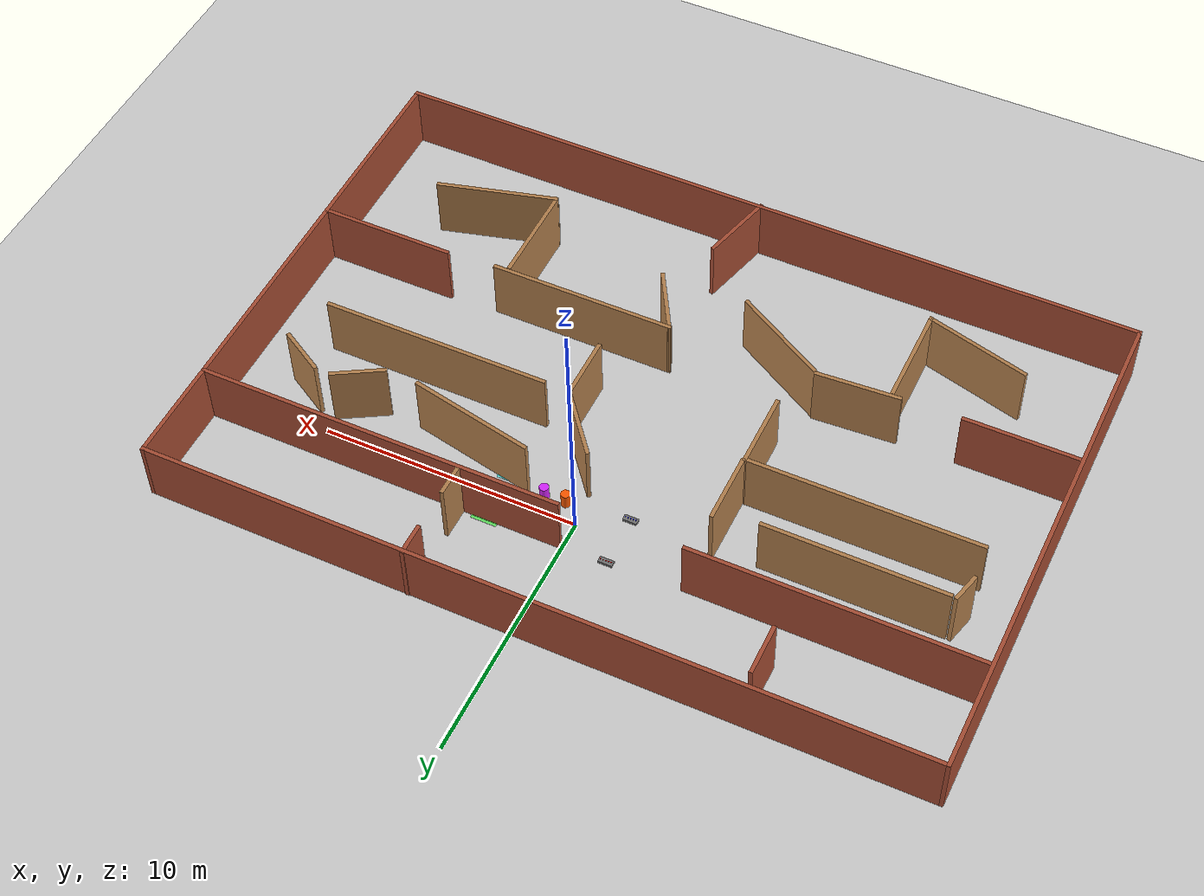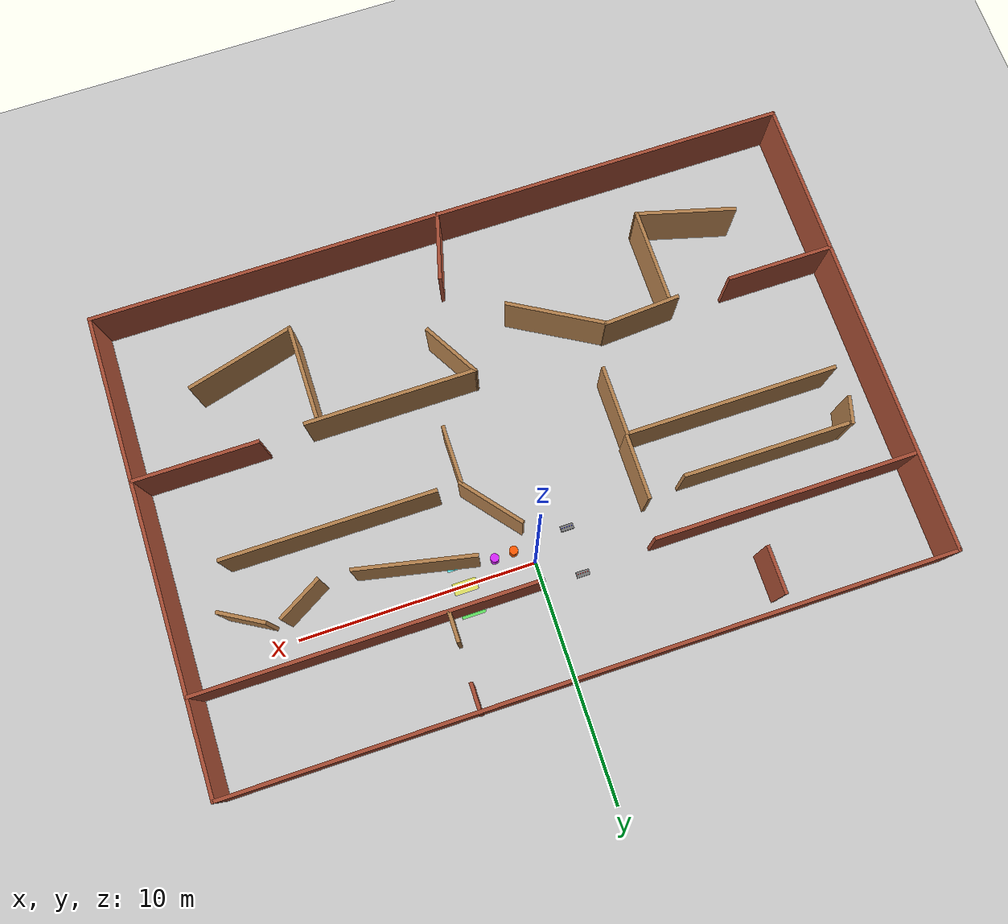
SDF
<sdf version="1.7">
 <world name="my_world">
  <model name="ground_plane">
   <static>1</static>
   <link name="link">
    <collision name="collision">
     <geometry><plane><normal>0 0 1</normal><size>100 100</size></plane></geometry>
     <surface>
      <contact><collide_bitmask>65535</collide_bitmask></contact>
      <friction><ode><mu>100</mu><mu2>50</mu2></ode></friction>
     </surface>
    </collision>
    <visual name="visual">
     <cast_shadows>0</cast_shadows>
     <geometry><plane><normal>0 0 1</normal><size>100 100</size></plane></geometry>
     <material>
      <script><uri>file://media/materials/scripts/gazebo.material</uri><name>Gazebo/Grey</name></script>
     </material>
    </visual>
   </link>
  </model>
  <model name="officeroom">
   <pose>-0.693163 -4.92976 0 0 -0 0</pose>
   <link name="Wall_10">
    <collision name="Wall_10_Collision">
     <geometry><box><size>20 0.15 2.5</size></box></geometry>
     <pose>0 0 1.25 0 -0 0</pose>
    </collision>
    <visual name="Wall_10_Visual">
     <pose>0 0 1.25 0 -0 0</pose>
     <geometry><box><size>20 0.15 2.5</size></box></geometry>
     <material>
      <script><uri>file://media/materials/scripts/gazebo.material</uri><name>Gazebo/Bricks</name></script>
      <ambient>1 1 1 1</ambient>
     </material>
     <meta><layer>0</layer></meta>
    </visual>
    <pose>14.925 0.014919 0 0 -0 -1.57081</pose>
   </link>
   <link name="Wall_107">
    <collision name="Wall_107_Collision">
     <geometry><box><size>3.27854 0.15 2.5</size></box></geometry>
     <pose>0 0 1.25 0 -0 0</pose>
    </collision>
    <visual name="Wall_107_Visual">
     <pose>0 0 1.25 0 -0 0</pose>
     <geometry><box><size>3.27854 0.15 2.5</size></box></geometry>
     <material>
      <script><uri>file://media/materials/scripts/gazebo.material</uri><name>Gazebo/Wood</name></script>
      <ambient>1 1 1 1</ambient>
     </material>
     <meta><layer>0</layer></meta>
    </visual>
    <pose>-6.58027 -3.242 0 0 -0 -3.08207</pose>
   </link>
   <link name="Wall_109">
    <collision name="Wall_109_Collision">
     <geometry><box><size>4.5 0.15 2.5</size></box></geometry>
     <pose>0 0 1.25 0 -0 0</pose>
    </collision>
    <visual name="Wall_109_Visual">
     <pose>0 0 1.25 0 -0 0</pose>
     <geometry><box><size>4.5 0.15 2.5</size></box></geometry>
     <material>
      <script><uri>file://media/materials/scripts/gazebo.material</uri><name>Gazebo/Bricks</name></script>
      <ambient>1 1 1 1</ambient>
     </material>
     <meta><layer>0</layer></meta>
    </visual>
    <pose>-12.6881 -3.41033 0 0 -0 0</pose>
   </link>
   <link name="Wall_113">
    <collision name="Wall_113_Collision">
     <geometry><box><size>7.25 0.15 2.5</size></box></geometry>
     <pose>0 0 1.25 0 -0 0</pose>
    </collision>
    <visual name="Wall_113_Visual">
     <pose>0 0 1.25 0 -0 0</pose>
     <geometry><box><size>7.25 0.15 2.5</size></box></geometry>
     <material>
      <script><uri>file://media/materials/scripts/gazebo.material</uri><name>Gazebo/Wood</name></script>
      <ambient>1 1 1 1</ambient>
     </material>
     <meta><layer>0</layer></meta>
    </visual>
    <pose>4.22386 -2.91887 0 0 -0 0</pose>
   </link>
   <link name="Wall_115">
    <collision name="Wall_115_Collision">
     <geometry><box><size>5.25 0.15 2.5</size></box></geometry>
     <pose>0 0 1.25 0 -0 0</pose>
    </collision>
    <visual name="Wall_115_Visual">
     <pose>0 0 1.25 0 -0 0</pose>
     <geometry><box><size>5.25 0.15 2.5</size></box></geometry>
     <material>
      <script><uri>file://media/materials/scripts/gazebo.material</uri><name>Gazebo/Bricks</name></script>
      <ambient>1 1 1 1</ambient>
     </material>
     <meta><layer>0</layer></meta>
    </visual>
    <pose>12.3137 -2.7793 0 0 -0 3.14159</pose>
   </link>
   <link name="Wall_118">
    <collision name="Wall_118_Collision">
     <geometry><box><size>2.5 0.15 2.5</size></box></geometry>
     <pose>0 0 1.25 0 -0 0</pose>
    </collision>
    <visual name="Wall_118_Visual">
     <pose>0 0 1.25 0 -0 0</pose>
     <geometry><box><size>2.5 0.15 2.5</size></box></geometry>
     <material>
      <script><uri>file://media/materials/scripts/gazebo.material</uri><name>Gazebo/Wood</name></script>
      <ambient>1 1 1 1</ambient>
     </material>
     <meta><layer>0</layer></meta>
    </visual>
    <pose>2.60295 0.147134 0 0 -0 -1.5708</pose>
   </link>
   <link name="Wall_12">
    <collision name="Wall_12_Collision">
     <geometry><box><size>30 0.15 2.5</size></box></geometry>
     <pose>0 0 1.25 0 -0 0</pose>
    </collision>
    <visual name="Wall_12_Visual">
     <pose>0 0 1.25 0 -0 0</pose>
     <geometry><box><size>30 0.15 2.5</size></box></geometry>
     <material>
      <script><uri>file://media/materials/scripts/gazebo.material</uri><name>Gazebo/Bricks</name></script>
      <ambient>1 1 1 1</ambient>
     </material>
     <meta><layer>0</layer></meta>
    </visual>
    <pose>-0.000162 -9.90993 0 0 -0 3.14159</pose>
   </link>
   <link name="Wall_120">
    <collision name="Wall_120_Collision">
     <geometry><box><size>2.75 0.15 2.5</size></box></geometry>
     <pose>0 0 1.25 0 -0 0</pose>
    </collision>
    <visual name="Wall_120_Visual">
     <pose>0 0 1.25 0 -0 0</pose>
     <geometry><box><size>2.75 0.15 2.5</size></box></geometry>
     <material>
      <script><uri>file://media/materials/scripts/gazebo.material</uri><name>Gazebo/Wood</name></script>
      <ambient>1 1 1 1</ambient>
     </material>
     <meta><layer>0</layer></meta>
    </visual>
    <pose>1.32386 -4.0447 0 0 -0 -1.0472</pose>
   </link>
   <link name="Wall_125">
    <collision name="Wall_125_Collision">
     <geometry><box><size>4 0.15 2.5</size></box></geometry>
     <pose>0 0 1.25 0 -0 0</pose>
    </collision>
    <visual name="Wall_125_Visual">
     <pose>0 0 1.25 0 -0 0</pose>
     <geometry><box><size>4 0.15 2.5</size></box></geometry>
     <material>
      <script><uri>file://media/materials/scripts/gazebo.material</uri><name>Gazebo/Wood</name></script>
      <ambient>1 1 1 1</ambient>
     </material>
     <meta><layer>0</layer></meta>
    </visual>
    <pose>-7.82101 -5.406 0 0 -0 -1.5708</pose>
   </link>
   <link name="Wall_127">
    <collision name="Wall_127_Collision">
     <geometry><box><size>4 0.15 2.5</size></box></geometry>
     <pose>0 0 1.25 0 -0 0</pose>
    </collision>
    <visual name="Wall_127_Visual">
     <pose>0 0 1.25 0 -0 0</pose>
     <geometry><box><size>4 0.15 2.5</size></box></geometry>
     <material>
      <script><uri>file://media/materials/scripts/gazebo.material</uri><name>Gazebo/Wood</name></script>
      <ambient>1 1 1 1</ambient>
     </material>
     <meta><layer>0</layer></meta>
    </visual>
    <pose>7.28181 -5.01384 0 0 -0 -1.5708</pose>
   </link>
   <link name="Wall_129">
    <collision name="Wall_129_Collision">
     <geometry><box><size>4.25 0.15 2.5</size></box></geometry>
     <pose>0 0 1.25 0 -0 0</pose>
    </collision>
    <visual name="Wall_129_Visual">
     <pose>0 0 1.25 0 -0 0</pose>
     <geometry><box><size>4.25 0.15 2.5</size></box></geometry>
     <material>
      <script><uri>file://media/materials/scripts/gazebo.material</uri><name>Gazebo/Wood</name></script>
      <ambient>1 1 1 1</ambient>
     </material>
     <meta><layer>0</layer></meta>
    </visual>
    <pose>-9.80116 -6.80042 0 0 -0 2.87979</pose>
   </link>
   <link name="Wall_132">
    <collision name="Wall_132_Collision">
     <geometry><box><size>4.75 0.15 2.5</size></box></geometry>
     <pose>0 0 1.25 0 -0 0</pose>
    </collision>
    <visual name="Wall_132_Visual">
     <pose>0 0 1.25 0 -0 0</pose>
     <geometry><box><size>4.75 0.15 2.5</size></box></geometry>
     <material>
      <script><uri>file://media/materials/scripts/gazebo.material</uri><name>Gazebo/Wood</name></script>
      <ambient>1 1 1 1</ambient>
     </material>
     <meta><layer>0</layer></meta>
    </visual>
    <pose>9.51735 -6.40461 0 0 -0 0.261799</pose>
   </link>
   <link name="Wall_134">
    <collision name="Wall_134_Collision">
     <geometry><box><size>3 0.15 2.5</size></box></geometry>
     <pose>0 0 1.25 0 -0 0</pose>
    </collision>
    <visual name="Wall_134_Visual">
     <pose>0 0 1.25 0 -0 0</pose>
     <geometry><box><size>3 0.15 2.5</size></box></geometry>
     <material>
      <script><uri>file://media/materials/scripts/gazebo.material</uri><name>Gazebo/Bricks</name></script>
      <ambient>1 1 1 1</ambient>
     </material>
     <meta><layer>0</layer></meta>
    </visual>
    <pose>0.445972 -8.57754 0 0 -0 1.309</pose>
   </link>
   <link name="Wall_15">
    <collision name="Wall_15_Collision">
     <geometry><box><size>20 0.15 2.5</size></box></geometry>
     <pose>0 0 1.25 0 -0 0</pose>
    </collision>
    <visual name="Wall_15_Visual">
     <pose>0 0 1.25 0 -0 0</pose>
     <geometry><box><size>20 0.15 2.5</size></box></geometry>
     <material>
      <script><uri>file://media/materials/scripts/gazebo.material</uri><name>Gazebo/Bricks</name></script>
      <ambient>1 1 1 1</ambient>
     </material>
     <meta><layer>0</layer></meta>
    </visual>
    <pose>-14.9252 0.015073 0 0 -0 1.5708</pose>
   </link>
   <link name="Wall_2">
    <collision name="Wall_2_Collision">
     <geometry><box><size>30 0.15 2.5</size></box></geometry>
     <pose>0 0 1.25 0 -0 0</pose>
    </collision>
    <visual name="Wall_2_Visual">
     <pose>0 0 1.25 0 -0 0</pose>
     <geometry><box><size>30 0.15 2.5</size></box></geometry>
     <material>
      <script><uri>file://media/materials/scripts/gazebo.material</uri><name>Gazebo/Bricks</name></script>
      <ambient>1 1 1 1</ambient>
     </material>
     <meta><layer>0</layer></meta>
    </visual>
    <pose>0.000163 9.93976 0 0 -0 0</pose>
   </link>
   <link name="Wall_29">
    <collision name="Wall_29_Collision">
     <geometry><box><size>1.25 0.15 2.5</size></box></geometry>
     <pose>0 0 1.25 0 -0 0</pose>
    </collision>
    <visual name="Wall_29_Visual">
     <pose>0 0 1.25 0 -0 0</pose>
     <geometry><box><size>1.25 0.15 2.5</size></box></geometry>
     <material>
      <script><uri>file://media/materials/scripts/gazebo.material</uri><name>Gazebo/Bricks</name></script>
      <ambient>1 1 1 1</ambient>
     </material>
     <meta><layer>0</layer></meta>
    </visual>
    <pose>4.61028 9.42084 0 0 -0 -1.5708</pose>
   </link>
   <link name="Wall_31">
    <collision name="Wall_31_Collision">
     <geometry><box><size>1.25 0.15 2.5</size></box></geometry>
     <pose>0 0 1.25 0 -0 0</pose>
    </collision>
    <visual name="Wall_31_Visual">
     <pose>0 0 1.25 0 -0 0</pose>
     <geometry><box><size>1.25 0.15 2.5</size></box></geometry>
     <material>
      <script><uri>file://media/materials/scripts/gazebo.material</uri><name>Gazebo/Wood</name></script>
      <ambient>1 1 1 1</ambient>
     </material>
     <meta><layer>0</layer></meta>
    </visual>
    <pose>4.59016 6.61881 0 0 -0 1.5708</pose>
   </link>
   <link name="Wall_34">
    <collision name="Wall_34_Collision">
     <geometry><box><size>2 0.15 2.5</size></box></geometry>
     <pose>0 0 1.25 0 -0 0</pose>
    </collision>
    <visual name="Wall_34_Visual">
     <pose>0 0 1.25 0 -0 0</pose>
     <geometry><box><size>2 0.15 2.5</size></box></geometry>
     <material>
      <script><uri>file://media/materials/scripts/gazebo.material</uri><name>Gazebo/Bricks</name></script>
      <ambient>1 1 1 1</ambient>
     </material>
     <meta><layer>0</layer></meta>
    </visual>
    <pose>-7.92097 8.43964 0 0 -0 -1.5708</pose>
   </link>
   <link name="Wall_38">
    <collision name="Wall_38_Collision">
     <geometry><box><size>11 0.15 2.5</size></box></geometry>
     <pose>0 0 1.25 0 -0 0</pose>
    </collision>
    <visual name="Wall_38_Visual">
     <pose>0 0 1.25 0 -0 0</pose>
     <geometry><box><size>11 0.15 2.5</size></box></geometry>
     <material>
      <script><uri>file://media/materials/scripts/gazebo.material</uri><name>Gazebo/Bricks</name></script>
      <ambient>1 1 1 1</ambient>
     </material>
     <meta><layer>0</layer></meta>
    </visual>
    <pose>-9.35541 5.8262 0 0 -0 0</pose>
   </link>
   <link name="Wall_40">
    <collision name="Wall_40_Collision">
     <geometry><box><size>14.25 0.15 2.5</size></box></geometry>
     <pose>0 0 1.25 0 -0 0</pose>
    </collision>
    <visual name="Wall_40_Visual">
     <pose>0 0 1.25 0 -0 0</pose>
     <geometry><box><size>14.25 0.15 2.5</size></box></geometry>
     <material>
      <script><uri>file://media/materials/scripts/gazebo.material</uri><name>Gazebo/Bricks</name></script>
      <ambient>1 1 1 1</ambient>
     </material>
     <meta><layer>0</layer></meta>
    </visual>
    <pose>7.83962 5.98375 0 0 -0 3.14159</pose>
   </link>
   <link name="Wall_46">
    <collision name="Wall_46_Collision">
     <geometry><box><size>7.0 0.15 2.5</size></box></geometry>
     <pose>0 0 1.25 0 -0 0</pose>
    </collision>
    <visual name="Wall_46_Visual">
     <pose>0 0 1.25 0 -0 0</pose>
     <geometry><box><size>7.0 0.15 2.5</size></box></geometry>
     <material>
      <script><uri>file://media/materials/scripts/gazebo.material</uri><name>Gazebo/Wood</name></script>
      <ambient>1 1 1 1</ambient>
     </material>
     <meta><layer>0</layer></meta>
    </visual>
    <pose>-9.30884 3.8355 0 0 -0 -0.004163</pose>
   </link>
   <link name="Wall_49">
    <collision name="Wall_49_Collision">
     <geometry><box><size>1.17019 0.15 2.5</size></box></geometry>
     <pose>0 0 1.25 0 -0 0</pose>
    </collision>
    <visual name="Wall_49_Visual">
     <pose>0 0 1.25 0 -0 0</pose>
     <geometry><box><size>1.17019 0.15 2.5</size></box></geometry>
     <material>
      <script><uri>file://media/materials/scripts/gazebo.material</uri><name>Gazebo/Wood</name></script>
      <ambient>1 1 1 1</ambient>
     </material>
     <meta><layer>0</layer></meta>
    </visual>
    <pose>-13.076 3.35727 0 0 -0 -1.82702</pose>
   </link>
   <link name="Wall_57">
    <collision name="Wall_57_Collision">
     <geometry><box><size>2.75 0.15 2.5</size></box></geometry>
     <pose>0 0 1.25 0 -0 0</pose>
    </collision>
    <visual name="Wall_57_Visual">
     <pose>0 0 1.25 0 -0 0</pose>
     <geometry><box><size>2.75 0.15 2.5</size></box></geometry>
     <material>
      <script><uri>file://media/materials/scripts/gazebo.material</uri><name>Gazebo/Wood</name></script>
      <ambient>1 1 1 1</ambient>
     </material>
     <meta><layer>0</layer></meta>
    </visual>
    <pose>-4.21161 2.89682 0 0 -0 1.5708</pose>
   </link>
   <link name="Wall_59">
    <collision name="Wall_59_Collision">
     <geometry><box><size>5.0 0.15 2.5</size></box></geometry>
     <pose>0 0 1.25 0 -0 0</pose>
    </collision>
    <visual name="Wall_59_Visual">
     <pose>0 0 1.25 0 -0 0</pose>
     <geometry><box><size>5.0 0.15 2.5</size></box></geometry>
     <material>
      <script><uri>file://media/materials/scripts/gazebo.material</uri><name>Gazebo/Wood</name></script>
      <ambient>1 1 1 1</ambient>
     </material>
     <meta><layer>0</layer></meta>
    </visual>
    <pose>5.28704 3.77735 0 0 -0 -0.202428</pose>
   </link>
   <link name="Wall_60">
    <collision name="Wall_60_Collision">
     <geometry><box><size>2.1 0.15 2.5</size></box></geometry>
     <pose>0 0 1.25 0 -0 0</pose>
    </collision>
    <visual name="Wall_60_Visual">
     <pose>0 0 1.25 0 -0 0</pose>
     <geometry><box><size>2.1 0.15 2.5</size></box></geometry>
     <material>
      <script><uri>file://media/materials/scripts/gazebo.material</uri><name>Gazebo/Wood</name></script>
      <ambient>1 1 1 1</ambient>
     </material>
     <meta><layer>0</layer></meta>
    </visual>
    <pose>9.88652 3.73459 0 0 -0 0.527727</pose>
   </link>
   <link name="Wall_61">
    <collision name="Wall_61_Collision">
     <geometry><box><size>2.0 0.15 2.5</size></box></geometry>
     <pose>0 0 1.25 0 -0 0</pose>
    </collision>
    <visual name="Wall_61_Visual">
     <pose>0 0 1.25 0 -0 0</pose>
     <geometry><box><size>2.0 0.15 2.5</size></box></geometry>
     <material>
      <script><uri>file://media/materials/scripts/gazebo.material</uri><name>Gazebo/Wood</name></script>
      <ambient>1 1 1 1</ambient>
     </material>
     <meta><layer>0</layer></meta>
    </visual>
    <pose>12.2003 3.7238 0 0 -0 -0.523599</pose>
   </link>
   <link name="Wall_66">
    <collision name="Wall_66_Collision">
     <geometry><box><size>3.01901 0.15 2.5</size></box></geometry>
     <pose>0 0 1.25 0 -0 0</pose>
    </collision>
    <visual name="Wall_66_Visual">
     <pose>0 0 1.25 0 -0 0</pose>
     <geometry><box><size>3.01901 0.15 2.5</size></box></geometry>
     <material>
      <script><uri>file://media/materials/scripts/gazebo.material</uri><name>Gazebo/Wood</name></script>
      <ambient>1 1 1 1</ambient>
     </material>
     <meta><layer>0</layer></meta>
    </visual>
    <pose>1.74226 2.43334 0 0 -0 2.25548</pose>
   </link>
   <link name="Wall_68">
    <collision name="Wall_68_Collision">
     <geometry><box><size>9 0.15 2.5</size></box></geometry>
     <pose>0 0 1.25 0 -0 0</pose>
    </collision>
    <visual name="Wall_68_Visual">
     <pose>0 0 1.25 0 -0 0</pose>
     <geometry><box><size>9 0.15 2.5</size></box></geometry>
     <material>
      <script><uri>file://media/materials/scripts/gazebo.material</uri><name>Gazebo/Wood</name></script>
      <ambient>1 1 1 1</ambient>
     </material>
     <meta><layer>0</layer></meta>
    </visual>
    <pose>-8.68528 1.49923 0 0 -0 3.14159</pose>
   </link>
   <link name="Wall_72">
    <collision name="Wall_72_Collision">
     <geometry><box><size>8.9356 0.15 2.5</size></box></geometry>
     <pose>0 0 1.25 0 -0 0</pose>
    </collision>
    <visual name="Wall_72_Visual">
     <pose>0 0 1.25 0 -0 0</pose>
     <geometry><box><size>8.9356 0.15 2.5</size></box></geometry>
     <material>
      <script><uri>file://media/materials/scripts/gazebo.material</uri><name>Gazebo/Wood</name></script>
      <ambient>1 1 1 1</ambient>
     </material>
     <meta><layer>0</layer></meta>
    </visual>
    <pose>8.04226 1.32213 0 0 -0 3.14159</pose>
   </link>
   <link name="Wall_75">
    <collision name="Wall_75_Collision">
     <geometry><box><size>3 0.15 2.5</size></box></geometry>
     <pose>0 0 1.25 0 -0 0</pose>
    </collision>
    <visual name="Wall_75_Visual">
     <pose>0 0 1.25 0 -0 0</pose>
     <geometry><box><size>3 0.15 2.5</size></box></geometry>
     <material>
      <script><uri>file://media/materials/scripts/gazebo.material</uri><name>Gazebo/Wood</name></script>
      <ambient>1 1 1 1</ambient>
     </material>
     <meta><layer>0</layer></meta>
    </visual>
    <pose>-4.26028 0.074229 0 0 -0 -1.5708</pose>
   </link>
   <link name="Wall_81">
    <collision name="Wall_81_Collision">
     <geometry><box><size>4.25 0.15 2.5</size></box></geometry>
     <pose>0 0 1.25 0 -0 0</pose>
    </collision>
    <visual name="Wall_81_Visual">
     <pose>0 0 1.25 0 -0 0</pose>
     <geometry><box><size>4.25 0.15 2.5</size></box></geometry>
     <material>
      <script><uri>file://media/materials/scripts/gazebo.material</uri><name>Gazebo/Wood</name></script>
      <ambient>1 1 1 1</ambient>
     </material>
     <meta><layer>0</layer></meta>
    </visual>
    <pose>-3.1969 -4.22048 0 0 -0 -0.523599</pose>
   </link>
   <static>1</static>
  </model>
  <model name="competition_red_pickup_tray">
   <static>true</static>
   <pose>-1.7 1 0.05 0 0 0</pose>
   <link name="tray">
    <collision name="collision">
     <geometry><box><size>0.55 0.24 0.10</size></box></geometry>
     <surface><friction><ode><mu>10</mu><mu2>10</mu2></ode></friction></surface>
    </collision>
    <visual name="visual">
     <geometry><box><size>0.55 0.24 0.10</size></box></geometry>
     <material><ambient>0.35 0.35 0.35 1</ambient><diffuse>0.45 0.45 0.45 1</diffuse></material>
    </visual>
   </link>
  </model>
  <model name="competition_blue_pickup_tray">
   <static>true</static>
   <pose>-1.7 -1 0.05 0 0 0</pose>
   <link name="tray">
    <collision name="collision">
     <geometry><box><size>0.55 0.24 0.10</size></box></geometry>
     <surface><friction><ode><mu>10</mu><mu2>10</mu2></ode></friction></surface>
    </collision>
    <visual name="visual">
     <geometry><box><size>0.55 0.24 0.10</size></box></geometry>
     <material><ambient>0.35 0.35 0.35 1</ambient><diffuse>0.45 0.45 0.45 1</diffuse></material>
    </visual>
   </link>
  </model>
  <model name="red_cube_1">
   <pose>-1.5 1 0.13 0 -0 0</pose>
   <link name="link">
    <inertial>
     <mass>0.005</mass>
     <inertia>
      <ixx>0.00000075</ixx>
      <ixy>0</ixy>
      <ixz>0</ixz>
      <iyy>0.00000075</iyy>
      <iyz>0</iyz>
      <izz>0.00000075</izz>
     </inertia>
    </inertial>
    <collision name="collision">
     <geometry><box><size>0.03 0.03 0.03</size></box></geometry>
     <surface>
      <contact>
       <ode>
        <soft_cfm>0.001</soft_cfm>
        <soft_erp>0.2</soft_erp>
        <max_vel>0.1</max_vel>
        <min_depth>0.001</min_depth>
       </ode>
      </contact>
      <friction><ode><mu>0.01</mu><mu2>0.01</mu2></ode></friction>
     </surface>
    </collision>
    <visual name="visual">
     <geometry><box><size>0.03 0.03 0.03</size></box></geometry>
     <material><ambient>1 0 0 1</ambient><diffuse>1 0 0 1</diffuse></material>
    </visual>
   </link>
  </model>
  <model name="red_cube_2">
   <pose>-1.6 1 0.13 0 -0 0</pose>
   <link name="link">
    <inertial>
     <mass>0.005</mass>
     <inertia>
      <ixx>0.00000075</ixx>
      <ixy>0</ixy>
      <ixz>0</ixz>
      <iyy>0.00000075</iyy>
      <iyz>0</iyz>
      <izz>0.00000075</izz>
     </inertia>
    </inertial>
    <collision name="collision">
     <geometry><box><size>0.03 0.03 0.03</size></box></geometry>
     <surface>
      <contact>
       <ode>
        <soft_cfm>0.001</soft_cfm>
        <soft_erp>0.2</soft_erp>
        <max_vel>0.1</max_vel>
        <min_depth>0.001</min_depth>
       </ode>
      </contact>
      <friction><ode><mu>0.01</mu><mu2>0.01</mu2></ode></friction>
     </surface>
    </collision>
    <visual name="visual">
     <geometry><box><size>0.03 0.03 0.03</size></box></geometry>
     <material><ambient>1 0 0 1</ambient><diffuse>1 0 0 1</diffuse></material>
    </visual>
   </link>
  </model>
  <model name="red_cube_3">
   <pose>-1.7 1 0.13 0 -0 0</pose>
   <link name="link">
    <inertial>
     <mass>0.005</mass>
     <inertia>
      <ixx>0.00000075</ixx>
      <ixy>0</ixy>
      <ixz>0</ixz>
      <iyy>0.00000075</iyy>
      <iyz>0</iyz>
      <izz>0.00000075</izz>
     </inertia>
    </inertial>
    <collision name="collision">
     <geometry><box><size>0.03 0.03 0.03</size></box></geometry>
     <surface>
      <contact>
       <ode>
        <soft_cfm>0.001</soft_cfm>
        <soft_erp>0.2</soft_erp>
        <max_vel>0.1</max_vel>
        <min_depth>0.001</min_depth>
       </ode>
      </contact>
      <friction><ode><mu>0.01</mu><mu2>0.01</mu2></ode></friction>
     </surface>
    </collision>
    <visual name="visual">
     <geometry><box><size>0.03 0.03 0.03</size></box></geometry>
     <material><ambient>1 0 0 1</ambient><diffuse>1 0 0 1</diffuse></material>
    </visual>
   </link>
  </model>
  <model name="red_cube_4">
   <pose>-1.8 1 0.13 0 -0 0</pose>
   <link name="link">
    <inertial>
     <mass>0.005</mass>
     <inertia>
      <ixx>0.00000075</ixx>
      <ixy>0</ixy>
      <ixz>0</ixz>
      <iyy>0.00000075</iyy>
      <iyz>0</iyz>
      <izz>0.00000075</izz>
     </inertia>
    </inertial>
    <collision name="collision">
     <geometry><box><size>0.03 0.03 0.03</size></box></geometry>
     <surface>
      <contact>
       <ode>
        <soft_cfm>0.001</soft_cfm>
        <soft_erp>0.2</soft_erp>
        <max_vel>0.1</max_vel>
        <min_depth>0.001</min_depth>
       </ode>
      </contact>
      <friction><ode><mu>0.01</mu><mu2>0.01</mu2></ode></friction>
     </surface>
    </collision>
    <visual name="visual">
     <geometry><box><size>0.03 0.03 0.03</size></box></geometry>
     <material><ambient>1 0 0 1</ambient><diffuse>1 0 0 1</diffuse></material>
    </visual>
   </link>
  </model>
  <model name="red_cube_5">
   <pose>-1.9 1 0.13 0 -0 0</pose>
   <link name="link">
    <inertial>
     <mass>0.005</mass>
     <inertia>
      <ixx>0.00000075</ixx>
      <ixy>0</ixy>
      <ixz>0</ixz>
      <iyy>0.00000075</iyy>
      <iyz>0</iyz>
      <izz>0.00000075</izz>
     </inertia>
    </inertial>
    <collision name="collision">
     <geometry><box><size>0.03 0.03 0.03</size></box></geometry>
     <surface>
      <contact>
       <ode>
        <soft_cfm>0.001</soft_cfm>
        <soft_erp>0.2</soft_erp>
        <max_vel>0.1</max_vel>
        <min_depth>0.001</min_depth>
       </ode>
      </contact>
      <friction><ode><mu>0.01</mu><mu2>0.01</mu2></ode></friction>
     </surface>
    </collision>
    <visual name="visual">
     <geometry><box><size>0.03 0.03 0.03</size></box></geometry>
     <material><ambient>1 0 0 1</ambient><diffuse>1 0 0 1</diffuse></material>
    </visual>
   </link>
  </model>
  <model name="blue_cube_1">
   <pose>-1.5 -1 0.13 0 -0 0</pose>
   <link name="link">
    <inertial>
     <mass>0.005</mass>
     <inertia>
      <ixx>0.00000075</ixx>
      <ixy>0</ixy>
      <ixz>0</ixz>
      <iyy>0.00000075</iyy>
      <iyz>0</iyz>
      <izz>0.00000075</izz>
     </inertia>
    </inertial>
    <collision name="collision">
     <geometry><box><size>0.03 0.03 0.03</size></box></geometry>
     <surface>
      <contact>
       <ode>
        <soft_cfm>0.001</soft_cfm>
        <soft_erp>0.2</soft_erp>
        <max_vel>0.1</max_vel>
        <min_depth>0.001</min_depth>
       </ode>
      </contact>
      <friction><ode><mu>0.01</mu><mu2>0.01</mu2></ode></friction>
     </surface>
    </collision>
    <visual name="visual">
     <geometry><box><size>0.03 0.03 0.03</size></box></geometry>
     <material><ambient>0 0 1 1</ambient><diffuse>0 0 1 1</diffuse></material>
    </visual>
   </link>
  </model>
  <model name="blue_cube_2">
   <pose>-1.6 -1 0.13 0 -0 0</pose>
   <link name="link">
    <inertial>
     <mass>0.005</mass>
     <inertia>
      <ixx>0.00000075</ixx>
      <ixy>0</ixy>
      <ixz>0</ixz>
      <iyy>0.00000075</iyy>
      <iyz>0</iyz>
      <izz>0.00000075</izz>
     </inertia>
    </inertial>
    <collision name="collision">
     <geometry><box><size>0.03 0.03 0.03</size></box></geometry>
     <surface>
      <contact>
       <ode>
        <soft_cfm>0.001</soft_cfm>
        <soft_erp>0.2</soft_erp>
        <max_vel>0.1</max_vel>
        <min_depth>0.001</min_depth>
       </ode>
      </contact>
      <friction><ode><mu>0.01</mu><mu2>0.01</mu2></ode></friction>
     </surface>
    </collision>
    <visual name="visual">
     <geometry><box><size>0.03 0.03 0.03</size></box></geometry>
     <material><ambient>0 0 1 1</ambient><diffuse>0 0 1 1</diffuse></material>
    </visual>
   </link>
  </model>
  <model name="blue_cube_3">
   <pose>-1.7 -1 0.13 0 -0 0</pose>
   <link name="link">
    <inertial>
     <mass>0.005</mass>
     <inertia>
      <ixx>0.00000075</ixx>
      <ixy>0</ixy>
      <ixz>0</ixz>
      <iyy>0.00000075</iyy>
      <iyz>0</iyz>
      <izz>0.00000075</izz>
     </inertia>
    </inertial>
    <collision name="collision">
     <geometry><box><size>0.03 0.03 0.03</size></box></geometry>
     <surface>
      <contact>
       <ode>
        <soft_cfm>0.001</soft_cfm>
        <soft_erp>0.2</soft_erp>
        <max_vel>0.1</max_vel>
        <min_depth>0.001</min_depth>
       </ode>
      </contact>
      <friction><ode><mu>0.01</mu><mu2>0.01</mu2></ode></friction>
     </surface>
    </collision>
    <visual name="visual">
     <geometry><box><size>0.03 0.03 0.03</size></box></geometry>
     <material><ambient>0 0 1 1</ambient><diffuse>0 0 1 1</diffuse></material>
    </visual>
   </link>
  </model>
  <model name="blue_cube_4">
   <pose>-1.8 -1 0.13 0 -0 0</pose>
   <link name="link">
    <inertial>
     <mass>0.005</mass>
     <inertia>
      <ixx>0.00000075</ixx>
      <ixy>0</ixy>
      <ixz>0</ixz>
      <iyy>0.00000075</iyy>
      <iyz>0</iyz>
      <izz>0.00000075</izz>
     </inertia>
    </inertial>
    <collision name="collision">
     <geometry><box><size>0.03 0.03 0.03</size></box></geometry>
     <surface>
      <contact>
       <ode>
        <soft_cfm>0.001</soft_cfm>
        <soft_erp>0.2</soft_erp>
        <max_vel>0.1</max_vel>
        <min_depth>0.001</min_depth>
       </ode>
      </contact>
      <friction><ode><mu>0.01</mu><mu2>0.01</mu2></ode></friction>
     </surface>
    </collision>
    <visual name="visual">
     <geometry><box><size>0.03 0.03 0.03</size></box></geometry>
     <material><ambient>0 0 1 1</ambient><diffuse>0 0 1 1</diffuse></material>
    </visual>
   </link>
  </model>
  <model name="blue_cube_5">
   <pose>-1.9 -1 0.13 0 -0 0</pose>
   <link name="link">
    <inertial>
     <mass>0.005</mass>
     <inertia>
      <ixx>0.00000075</ixx>
      <ixy>0</ixy>
      <ixz>0</ixz>
      <iyy>0.00000075</iyy>
      <iyz>0</iyz>
      <izz>0.00000075</izz>
     </inertia>
    </inertial>
    <collision name="collision">
     <geometry><box><size>0.03 0.03 0.03</size></box></geometry>
     <surface>
      <contact>
       <ode>
        <soft_cfm>0.001</soft_cfm>
        <soft_erp>0.2</soft_erp>
        <max_vel>0.1</max_vel>
        <min_depth>0.001</min_depth>
       </ode>
      </contact>
      <friction><ode><mu>0.01</mu><mu2>0.01</mu2></ode></friction>
     </surface>
    </collision>
    <visual name="visual">
     <geometry><box><size>0.03 0.03 0.03</size></box></geometry>
     <material><ambient>0 0 1 1</ambient><diffuse>0 0 1 1</diffuse></material>
    </visual>
   </link>
  </model>
  <model name="zone_a">
   <static>1</static>
   <pose>3 1 0.01 0 -0 0</pose>
   <link name="base">
    <visual name="visual">
     <geometry><box><size>1 0.5 0.02</size></box></geometry>
     <material><ambient>0 1 0 0.5</ambient><diffuse>0 1 0 0.5</diffuse></material>
    </visual>
   </link>
   <link name="letter_A_1">
    <pose>-0.1 0 0.22 0 0.4 0</pose>
    <visual name="v">
     <geometry><box><size>0.04 0.04 0.4</size></box></geometry>
     <material><ambient>0 0 0 1</ambient><diffuse>0 0 0 1</diffuse></material>
    </visual>
   </link>
   <link name="letter_A_2">
    <pose>0.1 0 0.22 0 -0.4 0</pose>
    <visual name="v">
     <geometry><box><size>0.04 0.04 0.4</size></box></geometry>
     <material><ambient>0 0 0 1</ambient><diffuse>0 0 0 1</diffuse></material>
    </visual>
   </link>
   <link name="letter_A_3">
    <pose>0 0 0.25 0 -0 0</pose>
    <visual name="v">
     <geometry><box><size>0.15 0.04 0.04</size></box></geometry>
     <material><ambient>0 0 0 1</ambient><diffuse>0 0 0 1</diffuse></material>
    </visual>
   </link>
  </model>
  <model name="zone_b">
   <static>1</static>
   <pose>3 0 0.01 0 -0 0</pose>
   <link name="base">
    <visual name="visual">
     <geometry><box><size>1 0.5 0.02</size></box></geometry>
     <material><ambient>1 1 0 0.5</ambient><diffuse>1 1 0 0.5</diffuse></material>
    </visual>
   </link>
   <link name="letter_B_vertical_stroke">
    <pose>-0.1 0 0.2 0 -0 0</pose>
    <visual name="v">
     <geometry><box><size>0.04 0.04 0.4</size></box></geometry>
     <material><ambient>0 0 0 1</ambient><diffuse>0 0 0 1</diffuse></material>
    </visual>
   </link>
   <link name="letter_B_top_horizontal">
    <pose>0.05 0 0.38 0 -0 0</pose>
    <visual name="v">
     <geometry><box><size>0.25 0.04 0.04</size></box></geometry>
     <material><ambient>0 0 0 1</ambient><diffuse>0 0 0 1</diffuse></material>
    </visual>
   </link>
   <link name="letter_B_middle_horizontal">
    <pose>0.05 0 0.2 0 -0 0</pose>
    <visual name="v">
     <geometry><box><size>0.25 0.04 0.04</size></box></geometry>
     <material><ambient>0 0 0 1</ambient><diffuse>0 0 0 1</diffuse></material>
    </visual>
   </link>
   <link name="letter_B_bottom_horizontal">
    <pose>0.05 0 0.02 0 -0 0</pose>
    <visual name="v">
     <geometry><box><size>0.25 0.04 0.04</size></box></geometry>
     <material><ambient>0 0 0 1</ambient><diffuse>0 0 0 1</diffuse></material>
    </visual>
   </link>
   <link name="letter_B_top_vertical_stroke">
    <pose>0.15 0 0.29 0 -0 0</pose>
    <visual name="v">
     <geometry><box><size>0.04 0.04 0.2</size></box></geometry>
     <material><ambient>0 0 0 1</ambient><diffuse>0 0 0 1</diffuse></material>
    </visual>
   </link>
   <link name="letter_B_bottom_vertical_stroke">
    <pose>0.15 0 0.11 0 -0 0</pose>
    <visual name="v">
     <geometry><box><size>0.04 0.04 0.2</size></box></geometry>
     <material><ambient>0 0 0 1</ambient><diffuse>0 0 0 1</diffuse></material>
    </visual>
   </link>
  </model>
  <model name="zone_c">
   <static>1</static>
   <pose>3 -1 0.01 0 -0 0</pose>
   <link name="base">
    <visual name="visual">
     <geometry><box><size>1 0.5 0.02</size></box></geometry>
     <material><ambient>0 1 1 0.5</ambient><diffuse>0 1 1 0.5</diffuse></material>
    </visual>
   </link>
   <link name="letter_C_1">
    <pose>-0.05 0 0.38 0 -0 0</pose>
    <visual name="v">
     <geometry><box><size>0.3 0.04 0.04</size></box></geometry>
     <material><ambient>0 0 0 1</ambient><diffuse>0 0 0 1</diffuse></material>
    </visual>
   </link>
   <link name="letter_C_2">
    <pose>-0.05 0 0.02 0 -0 0</pose>
    <visual name="v">
     <geometry><box><size>0.3 0.04 0.04</size></box></geometry>
     <material><ambient>0 0 0 1</ambient><diffuse>0 0 0 1</diffuse></material>
    </visual>
   </link>
   <link name="letter_C_3">
    <pose>-0.18 0 0.2 0 -0 0</pose>
    <visual name="v">
     <geometry><box><size>0.04 0.04 0.4</size></box></geometry>
     <material><ambient>0 0 0 1</ambient><diffuse>0 0 0 1</diffuse></material>
    </visual>
   </link>
  </model>
  <model name="competition_moving_obstacle">
   <static>false</static>
   <pose>0.70 -0.70 0.30 0 0 0</pose>
   <link name="body">
    <kinematic>true</kinematic>
    <gravity>false</gravity>
    <inertial>
     <mass>1.0</mass>
     <inertia><ixx>0.0381</ixx><ixy>0</ixy><ixz>0</ixz><iyy>0.0381</iyy><iyz>0</iyz><izz>0.0162</izz></inertia>
    </inertial>
    <collision name="collision">
     <geometry><cylinder><radius>0.18</radius><length>0.60</length></cylinder></geometry>
     <surface><friction><ode><mu>0.8</mu><mu2>0.8</mu2></ode></friction></surface>
    </collision>
    <visual name="visual">
     <geometry><cylinder><radius>0.18</radius><length>0.60</length></cylinder></geometry>
     <material><ambient>1.0 0.35 0.0 1</ambient><diffuse>1.0 0.35 0.0 1</diffuse></material>
    </visual>
   </link>
  </model>
  <model name="competition_moving_obstacle_2">
   <static>false</static>
   <pose>1.525 -0.65 0.30 0 0 0</pose>
   <link name="body">
    <kinematic>true</kinematic>
    <gravity>false</gravity>
    <inertial>
     <mass>1.0</mass>
     <inertia><ixx>0.0381</ixx><ixy>0</ixy><ixz>0</ixz><iyy>0.0381</iyy><iyz>0</iyz><izz>0.0162</izz></inertia>
    </inertial>
    <collision name="collision">
     <geometry><cylinder><radius>0.18</radius><length>0.60</length></cylinder></geometry>
     <surface><friction><ode><mu>0.8</mu><mu2>0.8</mu2></ode></friction></surface>
    </collision>
    <visual name="visual">
     <geometry><cylinder><radius>0.18</radius><length>0.60</length></cylinder></geometry>
     <material><ambient>0.85 0.15 1.0 1</ambient><diffuse>0.85 0.15 1.0 1</diffuse></material>
    </visual>
   </link>
  </model>
  <model name="red_cube_1_anchor"><static>true</static><pose>0 0 -1 0 0 0</pose><link name="link"/></model>
  <model name="red_cube_2_anchor"><static>true</static><pose>0 0 -1 0 0 0</pose><link name="link"/></model>
  <model name="red_cube_3_anchor"><static>true</static><pose>0 0 -1 0 0 0</pose><link name="link"/></model>
  <model name="red_cube_4_anchor"><static>true</static><pose>0 0 -1 0 0 0</pose><link name="link"/></model>
  <model name="red_cube_5_anchor"><static>true</static><pose>0 0 -1 0 0 0</pose><link name="link"/></model>
  <model name="blue_cube_1_anchor"><static>true</static><pose>0 0 -1 0 0 0</pose><link name="link"/></model>
  <model name="blue_cube_2_anchor"><static>true</static><pose>0 0 -1 0 0 0</pose><link name="link"/></model>
  <model name="blue_cube_3_anchor"><static>true</static><pose>0 0 -1 0 0 0</pose><link name="link"/></model>
  <model name="blue_cube_4_anchor"><static>true</static><pose>0 0 -1 0 0 0</pose><link name="link"/></model>
  <model name="blue_cube_5_anchor"><static>true</static><pose>0 0 -1 0 0 0</pose><link name="link"/></model>
 </world>
</sdf>
